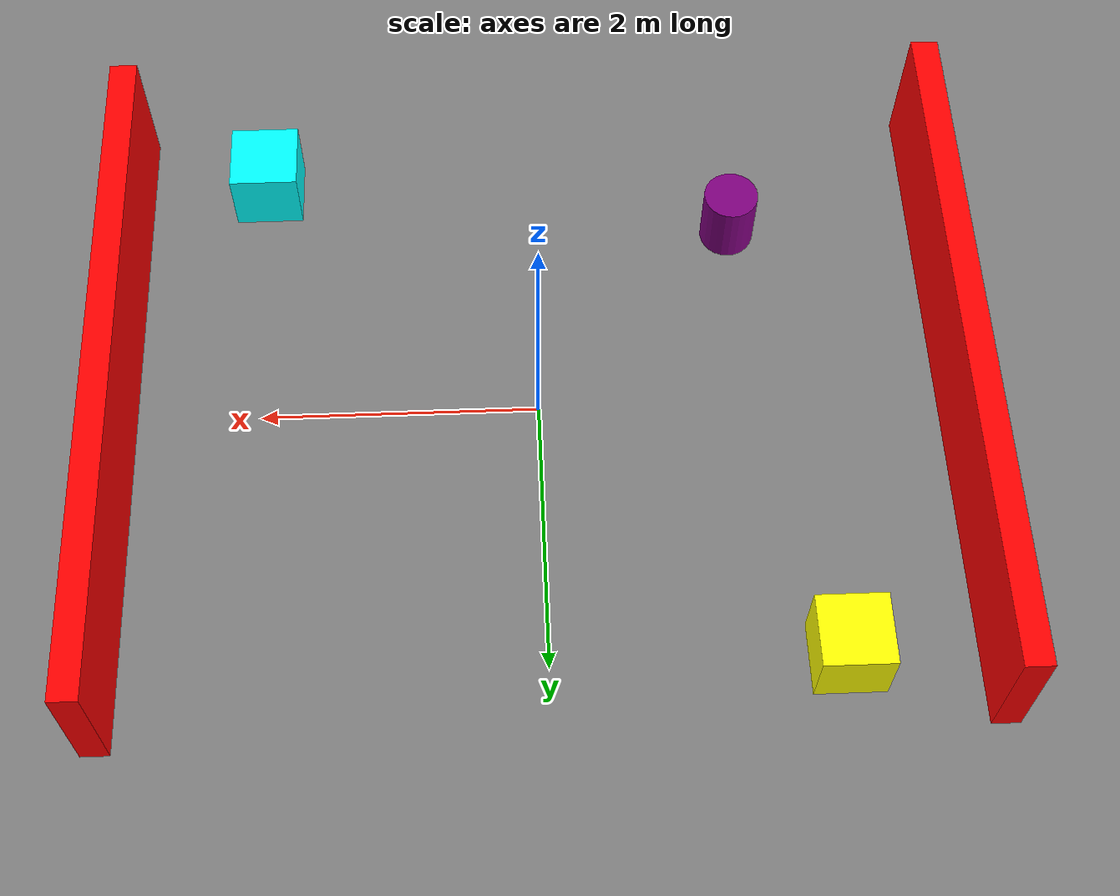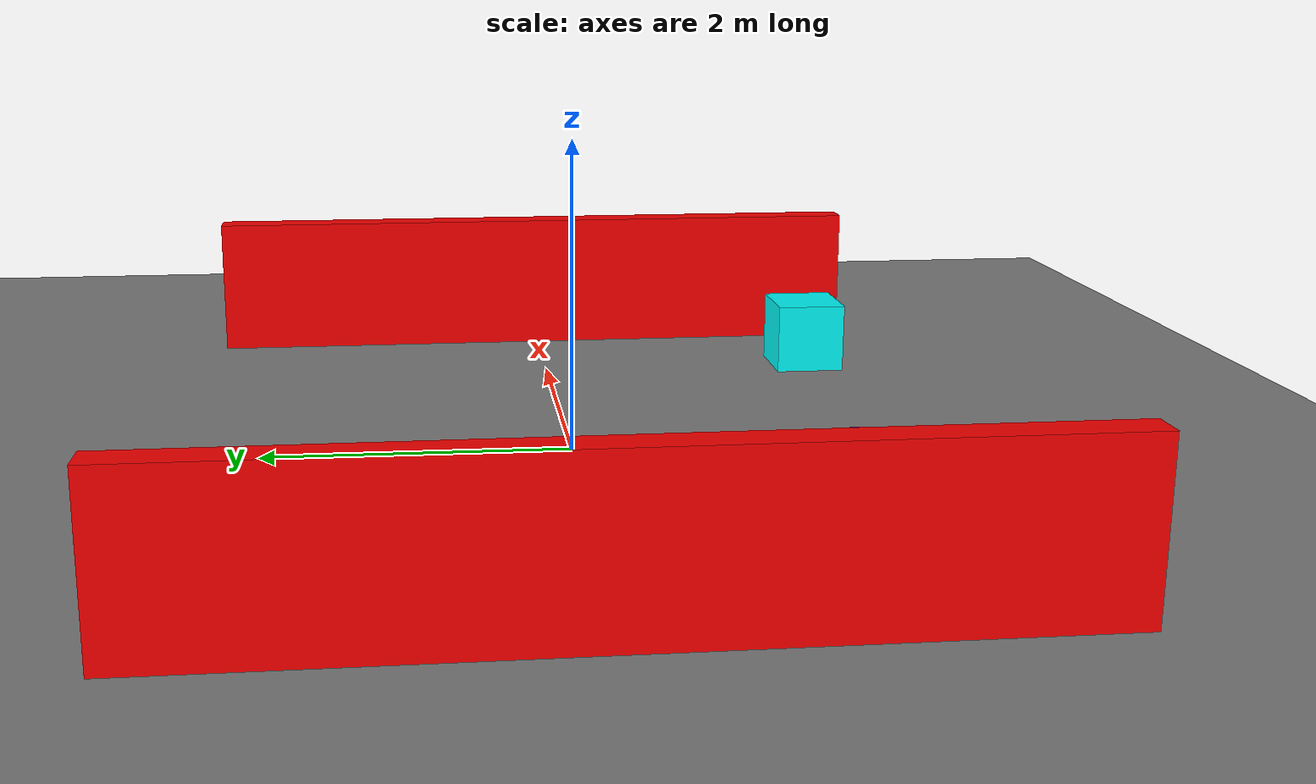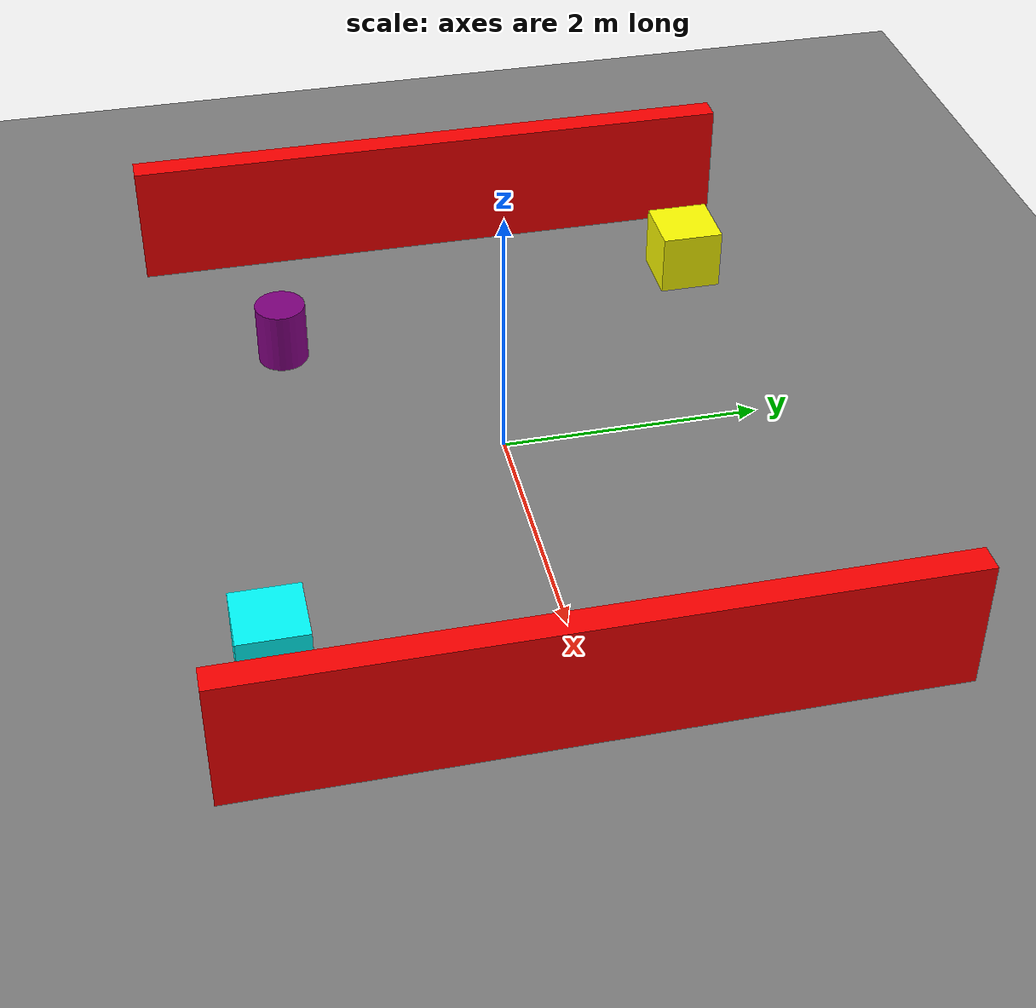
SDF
<sdf version="1.10">
  <world name="slam_world">

    <gravity>0 0 -9.8</gravity>
    <scene>
      <ambient>0.6 0.6 0.6 1</ambient>
      <background>0.9 0.9 0.9 1</background>
    </scene>

    <plugin name="gz::sim::systems::Physics" filename="gz-sim-physics-system"/>
    <plugin name="gz::sim::systems::UserCommands" filename="gz-sim-user-commands-system"/>
    <plugin name="gz::sim::systems::SceneBroadcaster" filename="gz-sim-scene-broadcaster-system"/>
    <plugin name="gz::sim::systems::Contact" filename="gz-sim-contact-system"/>

    <model name="ground_plane">
      <static>true</static>
      <link name="link">
        <inertial>
          <mass>1.0</mass>
          <inertia>
            <ixx>0.1</ixx>
            <iyy>0.1</iyy>
            <izz>0.1</izz>
            <ixy>0.0</ixy>
            <ixz>0.0</ixz>
            <iyz>0.0</iyz>
          </inertia>
          <pose>0 0 0 0 0 0</pose>
        </inertial>
        <collision name="collision">
          <geometry>
            <plane>
              <normal>0 0 1</normal>
              <size>20 20</size>
            </plane>
          </geometry>
        </collision>
        <visual name="visual">
          <geometry>
            <plane>
              <normal>0 0 1</normal>
              <size>20 20</size>
            </plane>
          </geometry>
          <material>
            <ambient>0.5 0.5 0.5 1</ambient>
            <diffuse>0.5 0.5 0.5 1</diffuse>
          </material>
        </visual>
      </link>
    </model>

    <light name="sun" type="directional">
      <pose>0 0 10 0 0 0</pose>
      <cast_shadows>true</cast_shadows>
      <diffuse>0.8 0.8 0.8 1</diffuse>
      <specular>0.2 0.2 0.2 1</specular>
      <direction>-0.5 0.1 -1</direction>
    </light>

    <!-- Red Wall-1 -->
    <model name="red_wall-1">
      <static>true</static>
      <pose>-3 0 0.5 0 0 0</pose>
      <link name="link">
        <inertial>
          <mass>1.0</mass>
          <inertia>
            <ixx>0.1</ixx>
            <iyy>0.1</iyy>
            <izz>0.1</izz>
            <ixy>0.0</ixy>
            <ixz>0.0</ixz>
            <iyz>0.0</iyz>
          </inertia>
          <pose>0 0 0 0 0 0</pose>
        </inertial>
        <visual name="visual">
          <geometry>
            <box><size>0.2 5 1</size></box>
          </geometry>
          <material>
            <ambient>1 0 0 1</ambient>
            <diffuse>1 0 0 1</diffuse>
          </material>
        </visual>
        <collision name="collision">
          <geometry>
            <box><size>0.2 5 1</size></box>
          </geometry>
        </collision>
      </link>
    </model>

    <!-- Red Wall-2 -->
    <model name="red_wall-2">
      <static>true</static>
      <pose>3 0 0.5 0 0 0</pose>
      <link name="link">
        <inertial>
          <mass>1.0</mass>
          <inertia>
            <ixx>0.1</ixx>
            <iyy>0.1</iyy>
            <izz>0.1</izz>
            <ixy>0.0</ixy>
            <ixz>0.0</ixz>
            <iyz>0.0</iyz>
          </inertia>
          <pose>0 0 0 0 0 0</pose>
        </inertial>
        <visual name="visual">
          <geometry>
            <box><size>0.2 5 1</size></box>
          </geometry>
          <material>
            <ambient>1 0 0 1</ambient>
            <diffuse>1 0 0 1</diffuse>
          </material>
        </visual>
        <collision name="collision">
          <geometry>
            <box><size>0.2 5 1</size></box>
          </geometry>
        </collision>
      </link>
    </model>

    <!-- Yellow Box -->
    <model name="yellow_box">
      <static>true</static>
      <pose>-2 2 0.25 0 0 0</pose>
      <link name="link">
        <inertial>
          <mass>1.0</mass>
          <inertia>
            <ixx>0.1</ixx>
            <iyy>0.1</iyy>
            <izz>0.1</izz>
            <ixy>0.0</ixy>
            <ixz>0.0</ixz>
            <iyz>0.0</iyz>
          </inertia>
          <pose>0 0 0 0 0 0</pose>
        </inertial>
        <visual name="visual">
          <geometry>
            <box><size>0.5 0.5 0.5</size></box>
          </geometry>
          <material>
            <ambient>1 1 0 1</ambient>
            <diffuse>1 1 0 1</diffuse>
          </material>
        </visual>
        <collision name="collision">
          <geometry>
            <box><size>0.5 0.5 0.5</size></box>
          </geometry>
        </collision>
      </link>
    </model>

    <!-- Cyan Box -->
    <model name="cyan_box">
      <static>true</static>
      <pose>2 -2 0.25 0 0 0</pose>
      <link name="link">
        <inertial>
          <mass>1.0</mass>
          <inertia>
            <ixx>0.1</ixx>
            <iyy>0.1</iyy>
            <izz>0.1</izz>
            <ixy>0.0</ixy>
            <ixz>0.0</ixz>
            <iyz>0.0</iyz>
          </inertia>
          <pose>0 0 0 0 0 0</pose>
        </inertial>
        <visual name="visual">
          <geometry>
            <box><size>0.5 0.5 0.5</size></box>
          </geometry>
          <material>
            <ambient>0 1 1 1</ambient>
            <diffuse>0 1 1 1</diffuse>
          </material>
        </visual>
        <collision name="collision">
          <geometry>
            <box><size>0.5 0.5 0.5</size></box>
          </geometry>
        </collision>
      </link>
    </model>

    <!-- Purple Cylinder -->
    <model name="purple_cylinder">
      <static>true</static>
      <pose>-1.5 -1.5 0.25 0 0 0</pose>
      <link name="link">
        <inertial>
          <mass>1.0</mass>
          <inertia>
            <ixx>0.1</ixx>
            <iyy>0.1</iyy>
            <izz>0.1</izz>
            <ixy>0.0</ixy>
            <ixz>0.0</ixz>
            <iyz>0.0</iyz>
          </inertia>
          <pose>0 0 0 0 0 0</pose>
        </inertial>
        <visual name="visual">
          <geometry>
            <cylinder><radius>0.2</radius><length>0.5</length></cylinder>
          </geometry>
          <material>
            <ambient>0.5 0 0.5 1</ambient>
            <diffuse>0.5 0 0.5 1</diffuse>
          </material>
        </visual>
        <collision name="collision">
          <geometry>
            <cylinder><radius>0.2</radius><length>0.5</length></cylinder>
          </geometry>
        </collision>
      </link>
    </model>

  </world>
</sdf>
